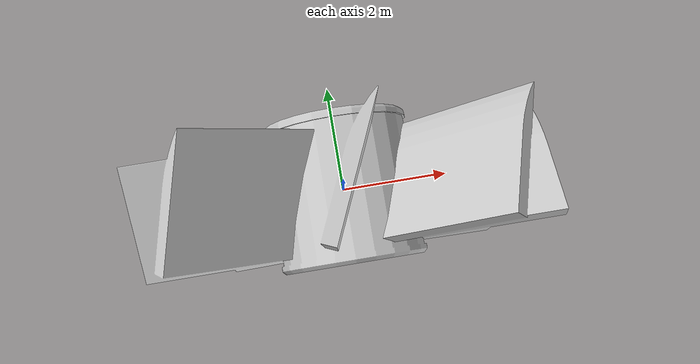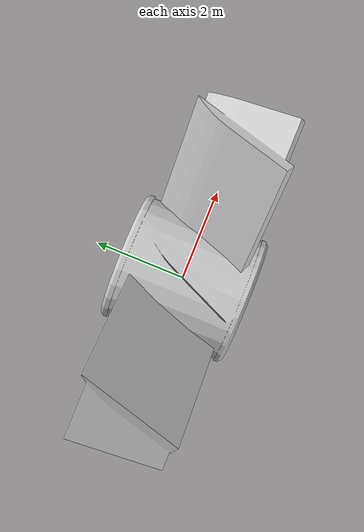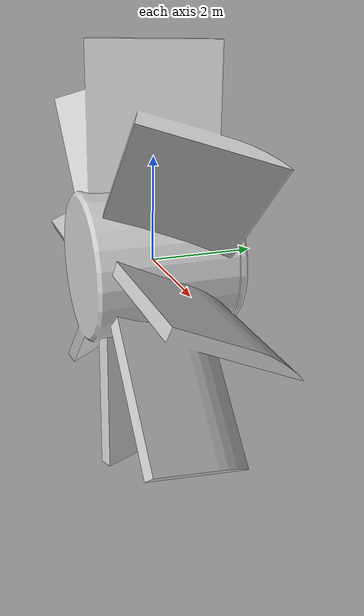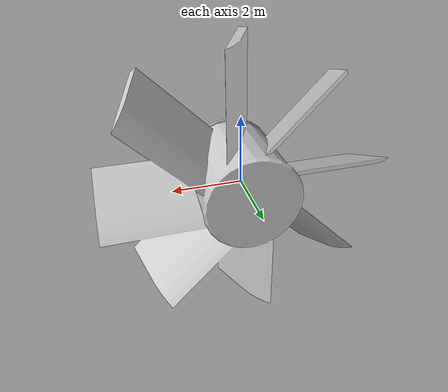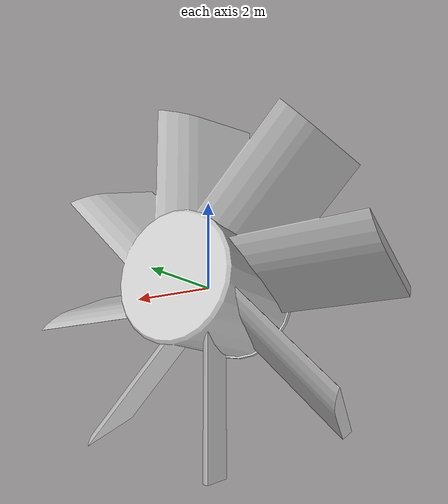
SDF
<?xml version="1.0"?>
<sdf version="1.9">
  <model name="moon_base_fan_blade">
    <static>false</static>
    <link name="Fan">
      <collision name="collision">
        <pose>0 0 0 0 0 0</pose>
        <geometry>
          <mesh>
            <uri>meshes/Fan.dae</uri>
          </mesh>
        </geometry>
      </collision>
      <visual name="visual">
        <geometry>
          <mesh>
            <uri>meshes/Fan.dae</uri>
          </mesh>
        </geometry>
        <material>
          <ambient>0.8 0.8 0.8 1</ambient>
          <diffuse>0.8 0.8 0.8 1</diffuse>
          <specular>0.8 0.8 0.8 1</specular>
            <pbr>
              <metal>
                <albedo_map>materials/textures/Fan_Albedo.jpg</albedo_map>
                <normal_map>materials/textures/Fan_Normal.jpg</normal_map>
                <roughness_map>materials/textures/Fan_Roughness.jpg</roughness_map>
                <metalness_map>materials/textures/Fan_Metalness.jpg</metalness_map>
              </metal>
            </pbr>
        </material>

      </visual>
    </link>
    <joint name="fan_joint" type="revolute">
      <parent>world</parent>
      <child>Fan</child>
      <axis>
        <xyz>0 1 0</xyz>
      </axis>
    </joint>
    <plugin filename="gz-sim-joint-controller-system" name="gz::sim::systems::JointController">
      <joint_name>fan_joint</joint_name>
      <initial_velocity>4.0</initial_velocity>
    </plugin>
  </model>
</sdf>
